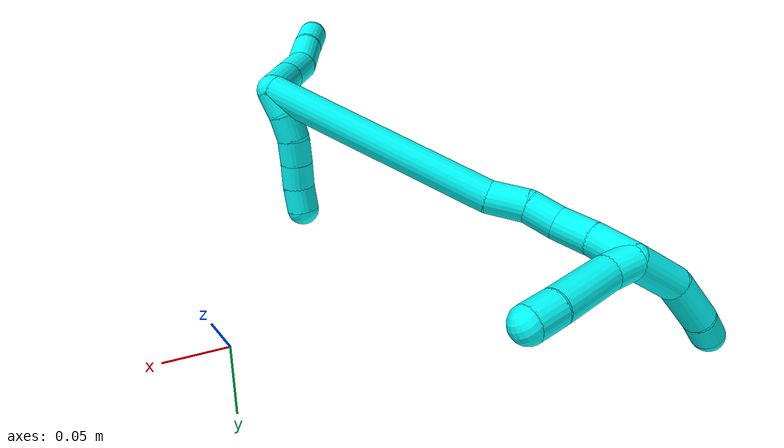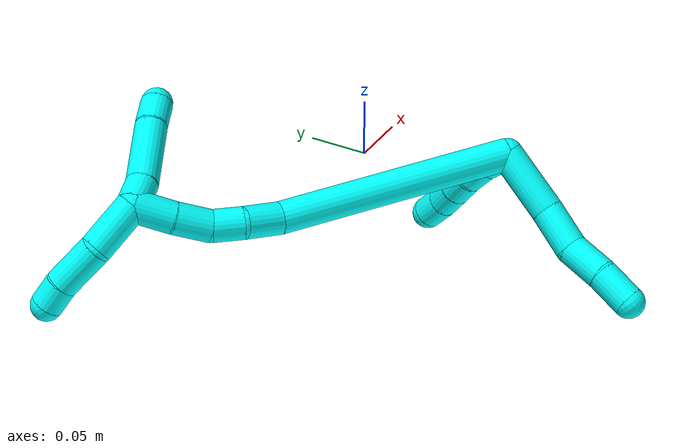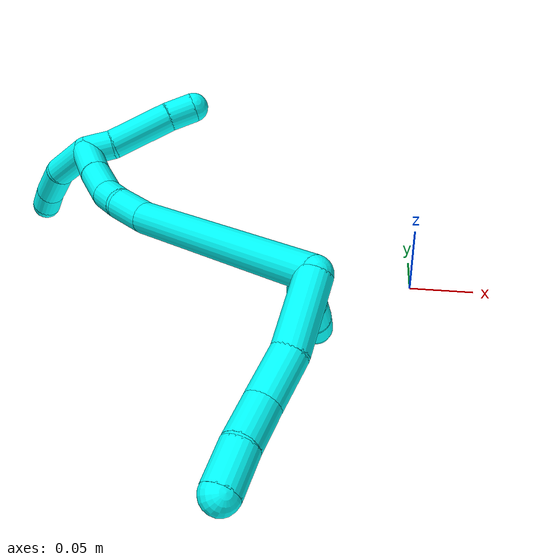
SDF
<sdf version="1.7">
 <world name="default">
  <model name="3">
   <static>0</static>
   <link name="3">
    <collision name="collision-cylinder-e_1_2_8">
     <pose>0.005208 -0.026177 0.000637 1.54645 0.196313 0.191621</pose>
     <geometry><cylinder><radius>0.0125</radius><length>0.053396</length></cylinder></geometry>
     <surface>
      <friction><ode><mu>1.16</mu><mu2>1.16</mu2><slip1>0</slip1><slip2>0</slip2></ode></friction>
      <contact><ode><kp>1e+06</kp><kd>1</kd><max_vel>0</max_vel><min_depth>0.001</min_depth></ode></contact>
     </surface>
    </collision>
    <visual name="visual-cylinder-e_1_2_8">
     <pose>0.005208 -0.026177 0.000637 1.54645 0.196313 0.191621</pose>
     <geometry><cylinder><radius>0.0125</radius><length>0.053396</length></cylinder></geometry>
     <material><ambient>0.003922 1 0.996078 1</ambient></material>
    </visual>
    <collision name="collision-cylinder-e_2_8_9">
     <pose>0.010478 -0.07008 0.001814 1.54039 0.003538 0.003432</pose>
     <geometry><cylinder><radius>0.0125</radius><length>0.035466</length></cylinder></geometry>
     <surface>
      <friction><ode><mu>1.16</mu><mu2>1.16</mu2><slip1>0</slip1><slip2>0</slip2></ode></friction>
      <contact><ode><kp>1e+06</kp><kd>1</kd><max_vel>0</max_vel><min_depth>0.001</min_depth></ode></contact>
     </surface>
    </collision>
    <visual name="visual-cylinder-e_2_8_9">
     <pose>0.010478 -0.07008 0.001814 1.54039 0.003538 0.003432</pose>
     <geometry><cylinder><radius>0.0125</radius><length>0.035466</length></cylinder></geometry>
     <material><ambient>0.003922 1 0.996078 1</ambient></material>
    </visual>
    <collision name="collision-cylinder-e_3_9_10">
     <pose>0.009831 -0.102758 0.007477 1.24065 -0.04483 -0.032029</pose>
     <geometry><cylinder><radius>0.0125</radius><length>0.031646</length></cylinder></geometry>
     <surface>
      <friction><ode><mu>1.16</mu><mu2>1.16</mu2><slip1>0</slip1><slip2>0</slip2></ode></friction>
      <contact><ode><kp>1e+06</kp><kd>1</kd><max_vel>0</max_vel><min_depth>0.001</min_depth></ode></contact>
     </surface>
    </collision>
    <visual name="visual-cylinder-e_3_9_10">
     <pose>0.009831 -0.102758 0.007477 1.24065 -0.04483 -0.032029</pose>
     <geometry><cylinder><radius>0.0125</radius><length>0.031646</length></cylinder></geometry>
     <material><ambient>0.003922 1 0.996078 1</ambient></material>
    </visual>
    <collision name="collision-cylinder-e_4_10_6">
     <pose>0.009908 -0.132094 0.01576 1.35464 0.053326 0.04289</pose>
     <geometry><cylinder><radius>0.0125</radius><length>0.029491</length></cylinder></geometry>
     <surface>
      <friction><ode><mu>1.16</mu><mu2>1.16</mu2><slip1>0</slip1><slip2>0</slip2></ode></friction>
      <contact><ode><kp>1e+06</kp><kd>1</kd><max_vel>0</max_vel><min_depth>0.001</min_depth></ode></contact>
     </surface>
    </collision>
    <visual name="visual-cylinder-e_4_10_6">
     <pose>0.009908 -0.132094 0.01576 1.35464 0.053326 0.04289</pose>
     <geometry><cylinder><radius>0.0125</radius><length>0.029491</length></cylinder></geometry>
     <material><ambient>0.003922 1 0.996078 1</ambient></material>
    </visual>
    <collision name="collision-cylinder-e_1_2_11">
     <pose>0.000746 0.001947 -0.00978 -2.9451 0.074684 -0.724613</pose>
     <geometry><cylinder><radius>0.0125</radius><length>0.02</length></cylinder></geometry>
     <surface>
      <friction><ode><mu>1.16</mu><mu2>1.16</mu2><slip1>0</slip1><slip2>0</slip2></ode></friction>
      <contact><ode><kp>1e+06</kp><kd>1</kd><max_vel>0</max_vel><min_depth>0.001</min_depth></ode></contact>
     </surface>
    </collision>
    <visual name="visual-cylinder-e_1_2_11">
     <pose>0.000746 0.001947 -0.00978 -2.9451 0.074684 -0.724613</pose>
     <geometry><cylinder><radius>0.0125</radius><length>0.02</length></cylinder></geometry>
     <material><ambient>0.003922 1 0.996078 1</ambient></material>
    </visual>
    <collision name="collision-cylinder-e_2_11_12">
     <pose>0.004364 0.004479 -0.029121 -3.08043 0.291245 -2.73033</pose>
     <geometry><cylinder><radius>0.0125</radius><length>0.02</length></cylinder></geometry>
     <surface>
      <friction><ode><mu>1.16</mu><mu2>1.16</mu2><slip1>0</slip1><slip2>0</slip2></ode></friction>
      <contact><ode><kp>1e+06</kp><kd>1</kd><max_vel>0</max_vel><min_depth>0.001</min_depth></ode></contact>
     </surface>
    </collision>
    <visual name="visual-cylinder-e_2_11_12">
     <pose>0.004364 0.004479 -0.029121 -3.08043 0.291245 -2.73033</pose>
     <geometry><cylinder><radius>0.0125</radius><length>0.02</length></cylinder></geometry>
     <material><ambient>0.003922 1 0.996078 1</ambient></material>
    </visual>
    <collision name="collision-cylinder-e_3_12_13">
     <pose>0.012233 0.00547 -0.047334 -3.09483 0.523372 -2.96741</pose>
     <geometry><cylinder><radius>0.0125</radius><length>0.02</length></cylinder></geometry>
     <surface>
      <friction><ode><mu>1.16</mu><mu2>1.16</mu2><slip1>0</slip1><slip2>0</slip2></ode></friction>
      <contact><ode><kp>1e+06</kp><kd>1</kd><max_vel>0</max_vel><min_depth>0.001</min_depth></ode></contact>
     </surface>
    </collision>
    <visual name="visual-cylinder-e_3_12_13">
     <pose>0.012233 0.00547 -0.047334 -3.09483 0.523372 -2.96741</pose>
     <geometry><cylinder><radius>0.0125</radius><length>0.02</length></cylinder></geometry>
     <material><ambient>0.003922 1 0.996078 1</ambient></material>
    </visual>
    <collision name="collision-cylinder-e_4_13_14">
     <pose>0.022484 0.006397 -0.06448 -3.08013 0.553029 -2.9258</pose>
     <geometry><cylinder><radius>0.0125</radius><length>0.02</length></cylinder></geometry>
     <surface>
      <friction><ode><mu>1.16</mu><mu2>1.16</mu2><slip1>0</slip1><slip2>0</slip2></ode></friction>
      <contact><ode><kp>1e+06</kp><kd>1</kd><max_vel>0</max_vel><min_depth>0.001</min_depth></ode></contact>
     </surface>
    </collision>
    <visual name="visual-cylinder-e_4_13_14">
     <pose>0.022484 0.006397 -0.06448 -3.08013 0.553029 -2.9258</pose>
     <geometry><cylinder><radius>0.0125</radius><length>0.02</length></cylinder></geometry>
     <material><ambient>0.003922 1 0.996078 1</ambient></material>
    </visual>
    <collision name="collision-cylinder-e_5_14_5">
     <pose>0.031865 0.008031 -0.082013 -3.01923 0.425545 -2.589</pose>
     <geometry><cylinder><radius>0.0125</radius><length>0.02</length></cylinder></geometry>
     <surface>
      <friction><ode><mu>1.16</mu><mu2>1.16</mu2><slip1>0</slip1><slip2>0</slip2></ode></friction>
      <contact><ode><kp>1e+06</kp><kd>1</kd><max_vel>0</max_vel><min_depth>0.001</min_depth></ode></contact>
     </surface>
    </collision>
    <visual name="visual-cylinder-e_5_14_5">
     <pose>0.031865 0.008031 -0.082013 -3.01923 0.425545 -2.589</pose>
     <geometry><cylinder><radius>0.0125</radius><length>0.02</length></cylinder></geometry>
     <material><ambient>0.003922 1 0.996078 1</ambient></material>
    </visual>
    <collision name="collision-cylinder-e_1_2_15">
     <pose>-0.055371 0.014732 -0.072534 -2.94121 -0.642288 2.55466</pose>
     <geometry><cylinder><radius>0.0125</radius><length>0.184868</length></cylinder></geometry>
     <surface>
      <friction><ode><mu>1.16</mu><mu2>1.16</mu2><slip1>0</slip1><slip2>0</slip2></ode></friction>
      <contact><ode><kp>1e+06</kp><kd>1</kd><max_vel>0</max_vel><min_depth>0.001</min_depth></ode></contact>
     </surface>
    </collision>
    <visual name="visual-cylinder-e_1_2_15">
     <pose>-0.055371 0.014732 -0.072534 -2.94121 -0.642288 2.55466</pose>
     <geometry><cylinder><radius>0.0125</radius><length>0.184868</length></cylinder></geometry>
     <material><ambient>0.003922 1 0.996078 1</ambient></material>
    </visual>
    <collision name="collision-cylinder-e_2_15_16">
     <pose>-0.122519 0.03231 -0.153917 -2.83044 -0.9026 2.51562</pose>
     <geometry><cylinder><radius>0.0125</radius><length>0.030009</length></cylinder></geometry>
     <surface>
      <friction><ode><mu>1.16</mu><mu2>1.16</mu2><slip1>0</slip1><slip2>0</slip2></ode></friction>
      <contact><ode><kp>1e+06</kp><kd>1</kd><max_vel>0</max_vel><min_depth>0.001</min_depth></ode></contact>
     </surface>
    </collision>
    <visual name="visual-cylinder-e_2_15_16">
     <pose>-0.122519 0.03231 -0.153917 -2.83044 -0.9026 2.51562</pose>
     <geometry><cylinder><radius>0.0125</radius><length>0.030009</length></cylinder></geometry>
     <material><ambient>0.003922 1 0.996078 1</ambient></material>
    </visual>
    <collision name="collision-cylinder-e_3_16_17">
     <pose>-0.141397 0.039236 -0.171819 -2.71814 -0.620799 1.96083</pose>
     <geometry><cylinder><radius>0.0125</radius><length>0.024415</length></cylinder></geometry>
     <surface>
      <friction><ode><mu>1.16</mu><mu2>1.16</mu2><slip1>0</slip1><slip2>0</slip2></ode></friction>
      <contact><ode><kp>1e+06</kp><kd>1</kd><max_vel>0</max_vel><min_depth>0.001</min_depth></ode></contact>
     </surface>
    </collision>
    <visual name="visual-cylinder-e_3_16_17">
     <pose>-0.141397 0.039236 -0.171819 -2.71814 -0.620799 1.96083</pose>
     <geometry><cylinder><radius>0.0125</radius><length>0.024415</length></cylinder></geometry>
     <material><ambient>0.003922 1 0.996078 1</ambient></material>
    </visual>
    <collision name="collision-cylinder-e_4_17_18">
     <pose>-0.158275 0.05116 -0.18816 -2.31953 -0.740007 1.4544</pose>
     <geometry><cylinder><radius>0.0125</radius><length>0.028997</length></cylinder></geometry>
     <surface>
      <friction><ode><mu>1.16</mu><mu2>1.16</mu2><slip1>0</slip1><slip2>0</slip2></ode></friction>
      <contact><ode><kp>1e+06</kp><kd>1</kd><max_vel>0</max_vel><min_depth>0.001</min_depth></ode></contact>
     </surface>
    </collision>
    <visual name="visual-cylinder-e_4_17_18">
     <pose>-0.158275 0.05116 -0.18816 -2.31953 -0.740007 1.4544</pose>
     <geometry><cylinder><radius>0.0125</radius><length>0.028997</length></cylinder></geometry>
     <material><ambient>0.003922 1 0.996078 1</ambient></material>
    </visual>
    <collision name="collision-cylinder-e_5_18_1">
     <pose>-0.177826 0.06884 -0.203135 -2.23408 -0.66427 1.23113</pose>
     <geometry><cylinder><radius>0.0125</radius><length>0.031711</length></cylinder></geometry>
     <surface>
      <friction><ode><mu>1.16</mu><mu2>1.16</mu2><slip1>0</slip1><slip2>0</slip2></ode></friction>
      <contact><ode><kp>1e+06</kp><kd>1</kd><max_vel>0</max_vel><min_depth>0.001</min_depth></ode></contact>
     </surface>
    </collision>
    <visual name="visual-cylinder-e_5_18_1">
     <pose>-0.177826 0.06884 -0.203135 -2.23408 -0.66427 1.23113</pose>
     <geometry><cylinder><radius>0.0125</radius><length>0.031711</length></cylinder></geometry>
     <material><ambient>0.003922 1 0.996078 1</ambient></material>
    </visual>
    <collision name="collision-cylinder-e_1_1_19">
     <pose>-0.194092 0.071285 -0.229135 2.75793 -0.317593 -1.37906</pose>
     <geometry><cylinder><radius>0.0125</radius><length>0.041577</length></cylinder></geometry>
     <surface>
      <friction><ode><mu>1.16</mu><mu2>1.16</mu2><slip1>0</slip1><slip2>0</slip2></ode></friction>
      <contact><ode><kp>1e+06</kp><kd>1</kd><max_vel>0</max_vel><min_depth>0.001</min_depth></ode></contact>
     </surface>
    </collision>
    <visual name="visual-cylinder-e_1_1_19">
     <pose>-0.194092 0.071285 -0.229135 2.75793 -0.317593 -1.37906</pose>
     <geometry><cylinder><radius>0.0125</radius><length>0.041577</length></cylinder></geometry>
     <material><ambient>0.003922 1 0.996078 1</ambient></material>
    </visual>
    <collision name="collision-cylinder-e_2_19_20">
     <pose>-0.201613 0.060547 -0.266185 2.96492 -0.05401 -0.592053</pose>
     <geometry><cylinder><radius>0.0125</radius><length>0.038123</length></cylinder></geometry>
     <surface>
      <friction><ode><mu>1.16</mu><mu2>1.16</mu2><slip1>0</slip1><slip2>0</slip2></ode></friction>
      <contact><ode><kp>1e+06</kp><kd>1</kd><max_vel>0</max_vel><min_depth>0.001</min_depth></ode></contact>
     </surface>
    </collision>
    <visual name="visual-cylinder-e_2_19_20">
     <pose>-0.201613 0.060547 -0.266185 2.96492 -0.05401 -0.592053</pose>
     <geometry><cylinder><radius>0.0125</radius><length>0.038123</length></cylinder></geometry>
     <material><ambient>0.003922 1 0.996078 1</ambient></material>
    </visual>
    <collision name="collision-cylinder-e_3_20_4">
     <pose>-0.202017 0.054329 -0.294637 2.85404 0.061648 0.419682</pose>
     <geometry><cylinder><radius>0.0125</radius><length>0.0203</length></cylinder></geometry>
     <surface>
      <friction><ode><mu>1.16</mu><mu2>1.16</mu2><slip1>0</slip1><slip2>0</slip2></ode></friction>
      <contact><ode><kp>1e+06</kp><kd>1</kd><max_vel>0</max_vel><min_depth>0.001</min_depth></ode></contact>
     </surface>
    </collision>
    <visual name="visual-cylinder-e_3_20_4">
     <pose>-0.202017 0.054329 -0.294637 2.85404 0.061648 0.419682</pose>
     <geometry><cylinder><radius>0.0125</radius><length>0.0203</length></cylinder></geometry>
     <material><ambient>0.003922 1 0.996078 1</ambient></material>
    </visual>
    <collision name="collision-cylinder-e_1_1_21">
     <pose>-0.179739 0.086391 -0.206967 -1.10734 0.739197 -0.470106</pose>
     <geometry><cylinder><radius>0.0125</radius><length>0.023338</length></cylinder></geometry>
     <surface>
      <friction><ode><mu>1.16</mu><mu2>1.16</mu2><slip1>0</slip1><slip2>0</slip2></ode></friction>
      <contact><ode><kp>1e+06</kp><kd>1</kd><max_vel>0</max_vel><min_depth>0.001</min_depth></ode></contact>
     </surface>
    </collision>
    <visual name="visual-cylinder-e_1_1_21">
     <pose>-0.179739 0.086391 -0.206967 -1.10734 0.739197 -0.470106</pose>
     <geometry><cylinder><radius>0.0125</radius><length>0.023338</length></cylinder></geometry>
     <material><ambient>0.003922 1 0.996078 1</ambient></material>
    </visual>
    <collision name="collision-cylinder-e_2_21_22">
     <pose>-0.158713 0.115748 -0.194535 -1.19352 0.514665 -0.353847</pose>
     <geometry><cylinder><radius>0.0125</radius><length>0.05349</length></cylinder></geometry>
     <surface>
      <friction><ode><mu>1.16</mu><mu2>1.16</mu2><slip1>0</slip1><slip2>0</slip2></ode></friction>
      <contact><ode><kp>1e+06</kp><kd>1</kd><max_vel>0</max_vel><min_depth>0.001</min_depth></ode></contact>
     </surface>
    </collision>
    <visual name="visual-cylinder-e_2_21_22">
     <pose>-0.158713 0.115748 -0.194535 -1.19352 0.514665 -0.353847</pose>
     <geometry><cylinder><radius>0.0125</radius><length>0.05349</length></cylinder></geometry>
     <material><ambient>0.003922 1 0.996078 1</ambient></material>
    </visual>
    <collision name="collision-cylinder-e_3_22_3">
     <pose>-0.138866 0.146166 -0.18241 -1.18647 0.614663 -0.421638</pose>
     <geometry><cylinder><radius>0.0125</radius><length>0.023172</length></cylinder></geometry>
     <surface>
      <friction><ode><mu>1.16</mu><mu2>1.16</mu2><slip1>0</slip1><slip2>0</slip2></ode></friction>
      <contact><ode><kp>1e+06</kp><kd>1</kd><max_vel>0</max_vel><min_depth>0.001</min_depth></ode></contact>
     </surface>
    </collision>
    <visual name="visual-cylinder-e_3_22_3">
     <pose>-0.138866 0.146166 -0.18241 -1.18647 0.614663 -0.421638</pose>
     <geometry><cylinder><radius>0.0125</radius><length>0.023172</length></cylinder></geometry>
     <material><ambient>0.003922 1 0.996078 1</ambient></material>
    </visual>
    <collision name="collision-sphere-3">
     <pose>-0.132185 0.154941 -0.178861 0 -0 0</pose>
     <geometry><sphere><radius>0.0125</radius></sphere></geometry>
     <surface>
      <friction><ode><mu>1.16</mu><mu2>1.16</mu2><slip1>0</slip1><slip2>0</slip2></ode></friction>
      <contact><ode><kp>1e+06</kp><kd>1</kd><max_vel>0</max_vel><min_depth>0.001</min_depth></ode></contact>
     </surface>
    </collision>
    <visual name="visual-sphere-3">
     <pose>-0.132185 0.154941 -0.178861 0 -0 0</pose>
     <geometry><sphere><radius>0.0125</radius></sphere></geometry>
     <material><ambient>0.003922 1 0.996078 1</ambient></material>
    </visual>
    <collision name="collision-sphere-22">
     <pose>-0.145548 0.137391 -0.185959 0 -0 0</pose>
     <geometry><sphere><radius>0.0125</radius></sphere></geometry>
     <surface>
      <friction><ode><mu>1.16</mu><mu2>1.16</mu2><slip1>0</slip1><slip2>0</slip2></ode></friction>
      <contact><ode><kp>1e+06</kp><kd>1</kd><max_vel>0</max_vel><min_depth>0.001</min_depth></ode></contact>
     </surface>
    </collision>
    <visual name="visual-sphere-22">
     <pose>-0.145548 0.137391 -0.185959 0 -0 0</pose>
     <geometry><sphere><radius>0.0125</radius></sphere></geometry>
     <material><ambient>0.003922 1 0.996078 1</ambient></material>
    </visual>
    <collision name="collision-sphere-21">
     <pose>-0.171878 0.094105 -0.203112 0 -0 0</pose>
     <geometry><sphere><radius>0.0125</radius></sphere></geometry>
     <surface>
      <friction><ode><mu>1.16</mu><mu2>1.16</mu2><slip1>0</slip1><slip2>0</slip2></ode></friction>
      <contact><ode><kp>1e+06</kp><kd>1</kd><max_vel>0</max_vel><min_depth>0.001</min_depth></ode></contact>
     </surface>
    </collision>
    <visual name="visual-sphere-21">
     <pose>-0.171878 0.094105 -0.203112 0 -0 0</pose>
     <geometry><sphere><radius>0.0125</radius></sphere></geometry>
     <material><ambient>0.003922 1 0.996078 1</ambient></material>
    </visual>
    <collision name="collision-sphere-4">
     <pose>-0.201391 0.051456 -0.304352 0 -0 0</pose>
     <geometry><sphere><radius>0.0125</radius></sphere></geometry>
     <surface>
      <friction><ode><mu>1.16</mu><mu2>1.16</mu2><slip1>0</slip1><slip2>0</slip2></ode></friction>
      <contact><ode><kp>1e+06</kp><kd>1</kd><max_vel>0</max_vel><min_depth>0.001</min_depth></ode></contact>
     </surface>
    </collision>
    <visual name="visual-sphere-4">
     <pose>-0.201391 0.051456 -0.304352 0 -0 0</pose>
     <geometry><sphere><radius>0.0125</radius></sphere></geometry>
     <material><ambient>0.003922 1 0.996078 1</ambient></material>
    </visual>
    <collision name="collision-sphere-20">
     <pose>-0.202642 0.057202 -0.284923 0 -0 0</pose>
     <geometry><sphere><radius>0.0125</radius></sphere></geometry>
     <surface>
      <friction><ode><mu>1.16</mu><mu2>1.16</mu2><slip1>0</slip1><slip2>0</slip2></ode></friction>
      <contact><ode><kp>1e+06</kp><kd>1</kd><max_vel>0</max_vel><min_depth>0.001</min_depth></ode></contact>
     </surface>
    </collision>
    <visual name="visual-sphere-20">
     <pose>-0.202642 0.057202 -0.284923 0 -0 0</pose>
     <geometry><sphere><radius>0.0125</radius></sphere></geometry>
     <material><ambient>0.003922 1 0.996078 1</ambient></material>
    </visual>
    <collision name="collision-sphere-11">
     <pose>0.001492 0.003894 -0.01956 0 -0 0</pose>
     <geometry><sphere><radius>0.0125</radius></sphere></geometry>
     <surface>
      <friction><ode><mu>1.16</mu><mu2>1.16</mu2><slip1>0</slip1><slip2>0</slip2></ode></friction>
      <contact><ode><kp>1e+06</kp><kd>1</kd><max_vel>0</max_vel><min_depth>0.001</min_depth></ode></contact>
     </surface>
    </collision>
    <visual name="visual-sphere-11">
     <pose>0.001492 0.003894 -0.01956 0 -0 0</pose>
     <geometry><sphere><radius>0.0125</radius></sphere></geometry>
     <material><ambient>0.003922 1 0.996078 1</ambient></material>
    </visual>
    <collision name="collision-sphere-6">
     <pose>0.010694 -0.146476 0.018918 0 -0 0</pose>
     <geometry><sphere><radius>0.0125</radius></sphere></geometry>
     <surface>
      <friction><ode><mu>1.16</mu><mu2>1.16</mu2><slip1>0</slip1><slip2>0</slip2></ode></friction>
      <contact><ode><kp>1e+06</kp><kd>1</kd><max_vel>0</max_vel><min_depth>0.001</min_depth></ode></contact>
     </surface>
    </collision>
    <visual name="visual-sphere-6">
     <pose>0.010694 -0.146476 0.018918 0 -0 0</pose>
     <geometry><sphere><radius>0.0125</radius></sphere></geometry>
     <material><ambient>0.003922 1 0.996078 1</ambient></material>
    </visual>
    <collision name="collision-sphere-10">
     <pose>0.009122 -0.117712 0.012602 0 -0 0</pose>
     <geometry><sphere><radius>0.0125</radius></sphere></geometry>
     <surface>
      <friction><ode><mu>1.16</mu><mu2>1.16</mu2><slip1>0</slip1><slip2>0</slip2></ode></friction>
      <contact><ode><kp>1e+06</kp><kd>1</kd><max_vel>0</max_vel><min_depth>0.001</min_depth></ode></contact>
     </surface>
    </collision>
    <visual name="visual-sphere-10">
     <pose>0.009122 -0.117712 0.012602 0 -0 0</pose>
     <geometry><sphere><radius>0.0125</radius></sphere></geometry>
     <material><ambient>0.003922 1 0.996078 1</ambient></material>
    </visual>
    <collision name="collision-sphere-9">
     <pose>0.010541 -0.087805 0.002353 0 -0 0</pose>
     <geometry><sphere><radius>0.0125</radius></sphere></geometry>
     <surface>
      <friction><ode><mu>1.16</mu><mu2>1.16</mu2><slip1>0</slip1><slip2>0</slip2></ode></friction>
      <contact><ode><kp>1e+06</kp><kd>1</kd><max_vel>0</max_vel><min_depth>0.001</min_depth></ode></contact>
     </surface>
    </collision>
    <visual name="visual-sphere-9">
     <pose>0.010541 -0.087805 0.002353 0 -0 0</pose>
     <geometry><sphere><radius>0.0125</radius></sphere></geometry>
     <material><ambient>0.003922 1 0.996078 1</ambient></material>
    </visual>
    <collision name="collision-sphere-2">
     <geometry><sphere><radius>0.0125</radius></sphere></geometry>
     <surface>
      <friction><ode><mu>1.16</mu><mu2>1.16</mu2><slip1>0</slip1><slip2>0</slip2></ode></friction>
      <contact><ode><kp>1e+06</kp><kd>1</kd><max_vel>0</max_vel><min_depth>0.001</min_depth></ode></contact>
     </surface>
    </collision>
    <visual name="visual-sphere-2">
     <geometry><sphere><radius>0.0125</radius></sphere></geometry>
     <material><ambient>0.003922 1 0.996078 1</ambient></material>
    </visual>
    <collision name="collision-sphere-19">
     <pose>-0.200584 0.063893 -0.247448 0 -0 0</pose>
     <geometry><sphere><radius>0.0125</radius></sphere></geometry>
     <surface>
      <friction><ode><mu>1.16</mu><mu2>1.16</mu2><slip1>0</slip1><slip2>0</slip2></ode></friction>
      <contact><ode><kp>1e+06</kp><kd>1</kd><max_vel>0</max_vel><min_depth>0.001</min_depth></ode></contact>
     </surface>
    </collision>
    <visual name="visual-sphere-19">
     <pose>-0.200584 0.063893 -0.247448 0 -0 0</pose>
     <geometry><sphere><radius>0.0125</radius></sphere></geometry>
     <material><ambient>0.003922 1 0.996078 1</ambient></material>
    </visual>
    <collision name="collision-sphere-8">
     <pose>0.010415 -0.052355 0.001275 0 -0 0</pose>
     <geometry><sphere><radius>0.0125</radius></sphere></geometry>
     <surface>
      <friction><ode><mu>1.16</mu><mu2>1.16</mu2><slip1>0</slip1><slip2>0</slip2></ode></friction>
      <contact><ode><kp>1e+06</kp><kd>1</kd><max_vel>0</max_vel><min_depth>0.001</min_depth></ode></contact>
     </surface>
    </collision>
    <visual name="visual-sphere-8">
     <pose>0.010415 -0.052355 0.001275 0 -0 0</pose>
     <geometry><sphere><radius>0.0125</radius></sphere></geometry>
     <material><ambient>0.003922 1 0.996078 1</ambient></material>
    </visual>
    <collision name="collision-sphere-12">
     <pose>0.007235 0.005065 -0.038682 0 -0 0</pose>
     <geometry><sphere><radius>0.0125</radius></sphere></geometry>
     <surface>
      <friction><ode><mu>1.16</mu><mu2>1.16</mu2><slip1>0</slip1><slip2>0</slip2></ode></friction>
      <contact><ode><kp>1e+06</kp><kd>1</kd><max_vel>0</max_vel><min_depth>0.001</min_depth></ode></contact>
     </surface>
    </collision>
    <visual name="visual-sphere-12">
     <pose>0.007235 0.005065 -0.038682 0 -0 0</pose>
     <geometry><sphere><radius>0.0125</radius></sphere></geometry>
     <material><ambient>0.003922 1 0.996078 1</ambient></material>
    </visual>
    <collision name="collision-sphere-13">
     <pose>0.017231 0.005874 -0.055986 0 -0 0</pose>
     <geometry><sphere><radius>0.0125</radius></sphere></geometry>
     <surface>
      <friction><ode><mu>1.16</mu><mu2>1.16</mu2><slip1>0</slip1><slip2>0</slip2></ode></friction>
      <contact><ode><kp>1e+06</kp><kd>1</kd><max_vel>0</max_vel><min_depth>0.001</min_depth></ode></contact>
     </surface>
    </collision>
    <visual name="visual-sphere-13">
     <pose>0.017231 0.005874 -0.055986 0 -0 0</pose>
     <geometry><sphere><radius>0.0125</radius></sphere></geometry>
     <material><ambient>0.003922 1 0.996078 1</ambient></material>
    </visual>
    <collision name="collision-sphere-14">
     <pose>0.027737 0.00692 -0.072973 0 -0 0</pose>
     <geometry><sphere><radius>0.0125</radius></sphere></geometry>
     <surface>
      <friction><ode><mu>1.16</mu><mu2>1.16</mu2><slip1>0</slip1><slip2>0</slip2></ode></friction>
      <contact><ode><kp>1e+06</kp><kd>1</kd><max_vel>0</max_vel><min_depth>0.001</min_depth></ode></contact>
     </surface>
    </collision>
    <visual name="visual-sphere-14">
     <pose>0.027737 0.00692 -0.072973 0 -0 0</pose>
     <geometry><sphere><radius>0.0125</radius></sphere></geometry>
     <material><ambient>0.003922 1 0.996078 1</ambient></material>
    </visual>
    <collision name="collision-sphere-5">
     <pose>0.035993 0.009143 -0.091053 0 -0 0</pose>
     <geometry><sphere><radius>0.0125</radius></sphere></geometry>
     <surface>
      <friction><ode><mu>1.16</mu><mu2>1.16</mu2><slip1>0</slip1><slip2>0</slip2></ode></friction>
      <contact><ode><kp>1e+06</kp><kd>1</kd><max_vel>0</max_vel><min_depth>0.001</min_depth></ode></contact>
     </surface>
    </collision>
    <visual name="visual-sphere-5">
     <pose>0.035993 0.009143 -0.091053 0 -0 0</pose>
     <geometry><sphere><radius>0.0125</radius></sphere></geometry>
     <material><ambient>0.003922 1 0.996078 1</ambient></material>
    </visual>
    <collision name="collision-sphere-15">
     <pose>-0.110741 0.029464 -0.145067 0 -0 0</pose>
     <geometry><sphere><radius>0.0125</radius></sphere></geometry>
     <surface>
      <friction><ode><mu>1.16</mu><mu2>1.16</mu2><slip1>0</slip1><slip2>0</slip2></ode></friction>
      <contact><ode><kp>1e+06</kp><kd>1</kd><max_vel>0</max_vel><min_depth>0.001</min_depth></ode></contact>
     </surface>
    </collision>
    <visual name="visual-sphere-15">
     <pose>-0.110741 0.029464 -0.145067 0 -0 0</pose>
     <geometry><sphere><radius>0.0125</radius></sphere></geometry>
     <material><ambient>0.003922 1 0.996078 1</ambient></material>
    </visual>
    <collision name="collision-sphere-16">
     <pose>-0.134297 0.035156 -0.162767 0 -0 0</pose>
     <geometry><sphere><radius>0.0125</radius></sphere></geometry>
     <surface>
      <friction><ode><mu>1.16</mu><mu2>1.16</mu2><slip1>0</slip1><slip2>0</slip2></ode></friction>
      <contact><ode><kp>1e+06</kp><kd>1</kd><max_vel>0</max_vel><min_depth>0.001</min_depth></ode></contact>
     </surface>
    </collision>
    <visual name="visual-sphere-16">
     <pose>-0.134297 0.035156 -0.162767 0 -0 0</pose>
     <geometry><sphere><radius>0.0125</radius></sphere></geometry>
     <material><ambient>0.003922 1 0.996078 1</ambient></material>
    </visual>
    <collision name="collision-sphere-17">
     <pose>-0.148498 0.043317 -0.180872 0 -0 0</pose>
     <geometry><sphere><radius>0.0125</radius></sphere></geometry>
     <surface>
      <friction><ode><mu>1.16</mu><mu2>1.16</mu2><slip1>0</slip1><slip2>0</slip2></ode></friction>
      <contact><ode><kp>1e+06</kp><kd>1</kd><max_vel>0</max_vel><min_depth>0.001</min_depth></ode></contact>
     </surface>
    </collision>
    <visual name="visual-sphere-17">
     <pose>-0.148498 0.043317 -0.180872 0 -0 0</pose>
     <geometry><sphere><radius>0.0125</radius></sphere></geometry>
     <material><ambient>0.003922 1 0.996078 1</ambient></material>
    </visual>
    <collision name="collision-sphere-18">
     <pose>-0.168051 0.059003 -0.195448 0 -0 0</pose>
     <geometry><sphere><radius>0.0125</radius></sphere></geometry>
     <surface>
      <friction><ode><mu>1.16</mu><mu2>1.16</mu2><slip1>0</slip1><slip2>0</slip2></ode></friction>
      <contact><ode><kp>1e+06</kp><kd>1</kd><max_vel>0</max_vel><min_depth>0.001</min_depth></ode></contact>
     </surface>
    </collision>
    <visual name="visual-sphere-18">
     <pose>-0.168051 0.059003 -0.195448 0 -0 0</pose>
     <geometry><sphere><radius>0.0125</radius></sphere></geometry>
     <material><ambient>0.003922 1 0.996078 1</ambient></material>
    </visual>
    <collision name="collision-sphere-1">
     <pose>-0.1876 0.078677 -0.210822 0 -0 0</pose>
     <geometry><sphere><radius>0.0125</radius></sphere></geometry>
     <surface>
      <friction><ode><mu>1.16</mu><mu2>1.16</mu2><slip1>0</slip1><slip2>0</slip2></ode></friction>
      <contact><ode><kp>1e+06</kp><kd>1</kd><max_vel>0</max_vel><min_depth>0.001</min_depth></ode></contact>
     </surface>
    </collision>
    <visual name="visual-sphere-1">
     <pose>-0.1876 0.078677 -0.210822 0 -0 0</pose>
     <geometry><sphere><radius>0.0125</radius></sphere></geometry>
     <material><ambient>0.003922 1 0.996078 1</ambient></material>
    </visual>
    <inertial>
     <pose>-0.080888 0.021044 -0.110792 0 -0 0</pose>
     <mass>0.75</mass>
     <inertia><ixx>-9e-05</ixx><ixy>0</ixy><ixz>0</ixz><iyy>0.000716</iyy><iyz>0</iyz><izz>0.000213</izz></inertia>
    </inertial>
   </link>
   <pose>-0.070227 -0.16246 0.084624 0.698987 0.563251 -0.041083</pose>
  </model>
 </world>
</sdf>
